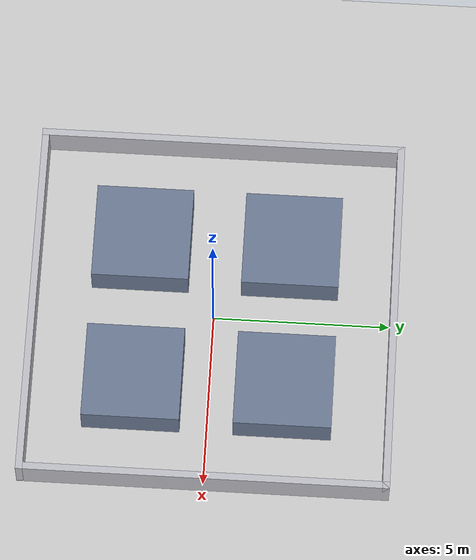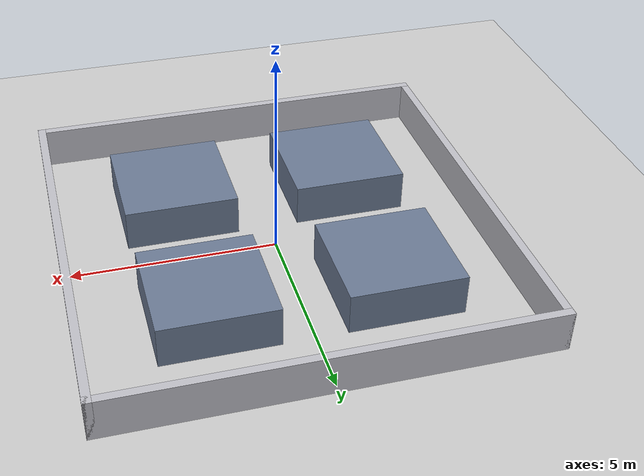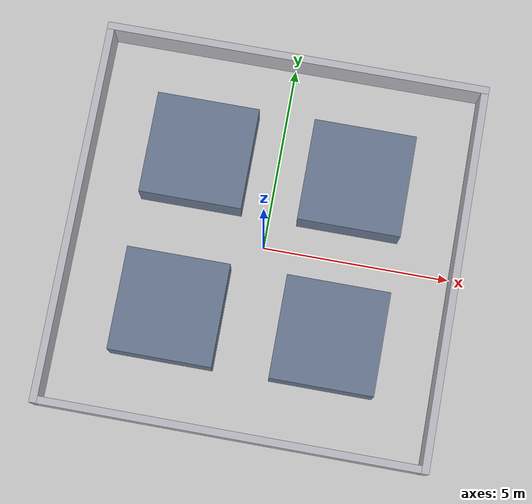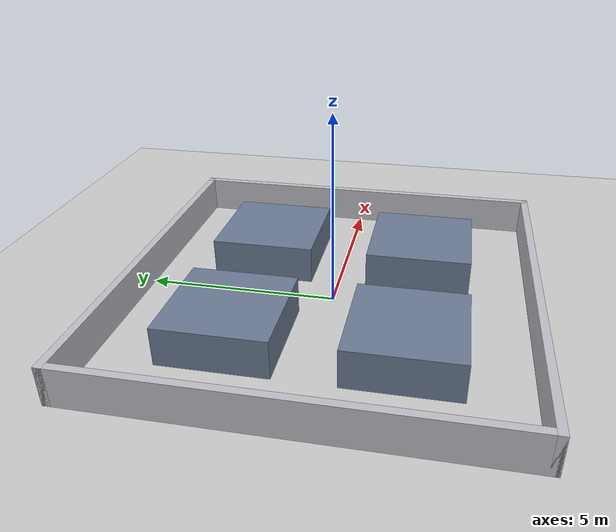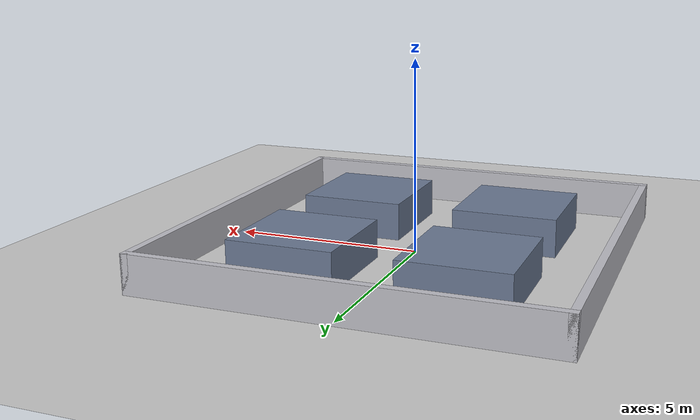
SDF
<?xml version="1.0" ?>
<sdf version="1.6">
  <!-- 田字格地图：10m 场地，1.5m 过道（十字走廊+外圈走廊），4 个长方体障碍块 -->
  <!-- 布局(单轴): 墙 | 1.5m走廊 | 2.75m障碍块 | 1.5m中央走廊 | 2.75m障碍块 | 1.5m走廊 | 墙 -->
  <world name="square_10m">

    <!-- 初始相机：从西南上方俯瞰整个场地 -->
    <gui fullscreen="0">
      <camera name="user_camera">
        <pose>-13 -13 10 0 0.5 0.785</pose>
      </camera>
    </gui>

    <!-- 阳光 -->
    <include>
      <uri>model://sun</uri>
    </include>

    <!-- 地面 -->
    <include>
      <uri>model://ground_plane</uri>
    </include>

    <!-- ==================== 外墙 ==================== -->

    <!-- 北墙（内侧面在 y=+5） -->
    <model name="wall_north">
      <static>true</static>
      <pose>0 5.1 0.5 0 0 0</pose>
      <link name="link">
        <collision name="collision">
          <geometry>
            <box><size>10.4 0.2 1.0</size></box>
          </geometry>
        </collision>
        <visual name="visual">
          <geometry>
            <box><size>10.4 0.2 1.0</size></box>
          </geometry>
          <material>
            <ambient>0.75 0.75 0.78 1</ambient>
            <diffuse>0.75 0.75 0.78 1</diffuse>
          </material>
        </visual>
      </link>
    </model>

    <!-- 南墙（内侧面在 y=-5） -->
    <model name="wall_south">
      <static>true</static>
      <pose>0 -5.1 0.5 0 0 0</pose>
      <link name="link">
        <collision name="collision">
          <geometry>
            <box><size>10.4 0.2 1.0</size></box>
          </geometry>
        </collision>
        <visual name="visual">
          <geometry>
            <box><size>10.4 0.2 1.0</size></box>
          </geometry>
          <material>
            <ambient>0.75 0.75 0.78 1</ambient>
            <diffuse>0.75 0.75 0.78 1</diffuse>
          </material>
        </visual>
      </link>
    </model>

    <!-- 东墙（内侧面在 x=+5） -->
    <model name="wall_east">
      <static>true</static>
      <pose>5.1 0 0.5 0 0 0</pose>
      <link name="link">
        <collision name="collision">
          <geometry>
            <box><size>0.2 10.4 1.0</size></box>
          </geometry>
        </collision>
        <visual name="visual">
          <geometry>
            <box><size>0.2 10.4 1.0</size></box>
          </geometry>
          <material>
            <ambient>0.75 0.75 0.78 1</ambient>
            <diffuse>0.75 0.75 0.78 1</diffuse>
          </material>
        </visual>
      </link>
    </model>

    <!-- 西墙（内侧面在 x=-5） -->
    <model name="wall_west">
      <static>true</static>
      <pose>-5.1 0 0.5 0 0 0</pose>
      <link name="link">
        <collision name="collision">
          <geometry>
            <box><size>0.2 10.4 1.0</size></box>
          </geometry>
        </collision>
        <visual name="visual">
          <geometry>
            <box><size>0.2 10.4 1.0</size></box>
          </geometry>
          <material>
            <ambient>0.75 0.75 0.78 1</ambient>
            <diffuse>0.75 0.75 0.78 1</diffuse>
          </material>
        </visual>
      </link>
    </model>

    <!-- ==================== 田字格障碍块 ==================== -->
    <!-- 4 个 2.75m x 2.75m x 1.0m 的长方体，中心距场地中心 2.125m -->
    <!-- 块与块、块与墙之间留出 1.5m 宽过道，形成"田"字走廊 -->

    <!-- 左下（第三象限）障碍块 -->
    <model name="obstacle_sw">
      <static>true</static>
      <pose>-2.125 -2.125 0.5 0 0 0</pose>
      <link name="link">
        <collision name="collision">
          <geometry>
            <box><size>2.75 2.75 1.0</size></box>
          </geometry>
        </collision>
        <visual name="visual">
          <geometry>
            <box><size>2.75 2.75 1.0</size></box>
          </geometry>
          <material>
            <ambient>0.42 0.48 0.58 1</ambient>
            <diffuse>0.42 0.48 0.58 1</diffuse>
          </material>
        </visual>
      </link>
    </model>

    <!-- 右下（第四象限）障碍块 -->
    <model name="obstacle_se">
      <static>true</static>
      <pose>2.125 -2.125 0.5 0 0 0</pose>
      <link name="link">
        <collision name="collision">
          <geometry>
            <box><size>2.75 2.75 1.0</size></box>
          </geometry>
        </collision>
        <visual name="visual">
          <geometry>
            <box><size>2.75 2.75 1.0</size></box>
          </geometry>
          <material>
            <ambient>0.42 0.48 0.58 1</ambient>
            <diffuse>0.42 0.48 0.58 1</diffuse>
          </material>
        </visual>
      </link>
    </model>

    <!-- 左上（第二象限）障碍块 -->
    <model name="obstacle_nw">
      <static>true</static>
      <pose>-2.125 2.125 0.5 0 0 0</pose>
      <link name="link">
        <collision name="collision">
          <geometry>
            <box><size>2.75 2.75 1.0</size></box>
          </geometry>
        </collision>
        <visual name="visual">
          <geometry>
            <box><size>2.75 2.75 1.0</size></box>
          </geometry>
          <material>
            <ambient>0.42 0.48 0.58 1</ambient>
            <diffuse>0.42 0.48 0.58 1</diffuse>
          </material>
        </visual>
      </link>
    </model>

    <!-- 右上（第一象限）障碍块 -->
    <model name="obstacle_ne">
      <static>true</static>
      <pose>2.125 2.125 0.5 0 0 0</pose>
      <link name="link">
        <collision name="collision">
          <geometry>
            <box><size>2.75 2.75 1.0</size></box>
          </geometry>
        </collision>
        <visual name="visual">
          <geometry>
            <box><size>2.75 2.75 1.0</size></box>
          </geometry>
          <material>
            <ambient>0.42 0.48 0.58 1</ambient>
            <diffuse>0.42 0.48 0.58 1</diffuse>
          </material>
        </visual>
      </link>
    </model>

  </world>
</sdf>
